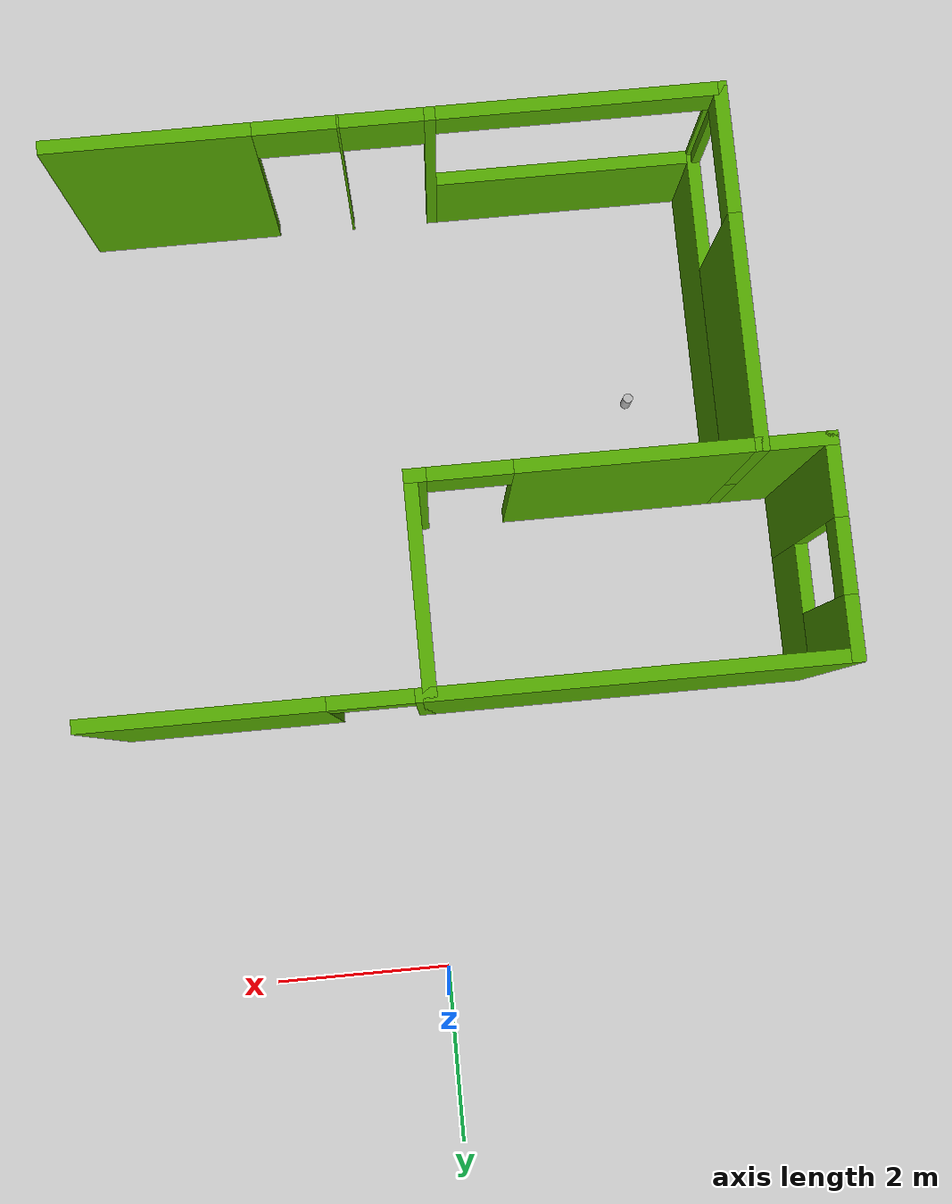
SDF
<sdf version="1.6">
 <world name="default">
  <model name="ground_plane">
   <static>1</static>
   <link name="link">
    <collision name="collision">
     <geometry><plane><normal>0 0 1</normal><size>100 100</size></plane></geometry>
     <surface><friction><ode><mu>100</mu><mu2>50</mu2></ode></friction></surface>
    </collision>
    <visual name="visual">
     <cast_shadows>0</cast_shadows>
     <geometry><plane><normal>0 0 1</normal><size>100 100</size></plane></geometry>
     <material>
      <script><uri>file://media/materials/scripts/gazebo.material</uri><name>Gazebo/Grey</name></script>
     </material>
    </visual>
   </link>
  </model>
  <model name="1floorHouse">
   <link name="Wall_292">
    <pose>-4.3959 -4.53994 0 0 0 -3.14158</pose>
    <visual name="Wall_292_Visual_0">
     <pose>-2.52118 0 1.25 0 -0 0</pose>
     <geometry><box><size>2.25743 0.15 2.5</size></box></geometry>
     <material>
      <script><uri>file://media/materials/scripts/gazebo.material</uri><name>Gazebo/Grey</name></script>
      <ambient>0.333333 0.666667 0 1</ambient>
      <diffuse>0.7 0.7 0.7 1</diffuse>
      <specular>0.01 0.01 0.01 1</specular>
      <emissive>0 0 0 1</emissive>
     </material>
    </visual>
    <visual name="Wall_292_Visual_1">
     <pose>-0.479853 0 1.25 0 -0 0</pose>
     <geometry><box><size>0.025221 0.15 2.5</size></box></geometry>
     <material>
      <script><uri>file://media/materials/scripts/gazebo.material</uri><name>Gazebo/Grey</name></script>
      <ambient>0.333333 0.666667 0 1</ambient>
      <diffuse>0.7 0.7 0.7 1</diffuse>
      <specular>0.01 0.01 0.01 1</specular>
      <emissive>0 0 0 1</emissive>
     </material>
    </visual>
    <visual name="Wall_292_Visual_2">
     <pose>0.492301 0 1.25 0 -0 0</pose>
     <geometry><box><size>0.119086 0.15 2.5</size></box></geometry>
     <material>
      <script><uri>file://media/materials/scripts/gazebo.material</uri><name>Gazebo/Grey</name></script>
      <ambient>0.333333 0.666667 0 1</ambient>
      <diffuse>0.7 0.7 0.7 1</diffuse>
      <specular>0.01 0.01 0.01 1</specular>
      <emissive>0 0 0 1</emissive>
     </material>
    </visual>
    <visual name="Wall_292_Visual_3">
     <pose>2.10087 0 0.5 0 -0 0</pose>
     <geometry><box><size>3.09805 0.15 1</size></box></geometry>
     <material>
      <script><uri>file://media/materials/scripts/gazebo.material</uri><name>Gazebo/Grey</name></script>
      <ambient>0.333333 0.666667 0 1</ambient>
      <diffuse>0.7 0.7 0.7 1</diffuse>
      <specular>0.01 0.01 0.01 1</specular>
      <emissive>0 0 0 1</emissive>
     </material>
    </visual>
    <visual name="Wall_292_Visual_4">
     <pose>3.60087 0 1.75 0 -0 0</pose>
     <geometry><box><size>0.098047 0.15 1.5</size></box></geometry>
     <material>
      <script><uri>file://media/materials/scripts/gazebo.material</uri><name>Gazebo/Grey</name></script>
      <ambient>0.333333 0.666667 0 1</ambient>
      <diffuse>0.7 0.7 0.7 1</diffuse>
      <specular>0.01 0.01 0.01 1</specular>
      <emissive>0 0 0 1</emissive>
     </material>
    </visual>
    <visual name="Wall_292_Visual_5">
     <pose>-0.942463 0 2.25 0 -0 0</pose>
     <geometry><box><size>0.9 0.15 0.5</size></box></geometry>
     <material>
      <script><uri>file://media/materials/scripts/gazebo.material</uri><name>Gazebo/Grey</name></script>
      <ambient>0.333333 0.666667 0 1</ambient>
      <diffuse>0.7 0.7 0.7 1</diffuse>
      <specular>0.01 0.01 0.01 1</specular>
      <emissive>0 0 0 1</emissive>
     </material>
    </visual>
    <visual name="Wall_292_Visual_6">
     <pose>-0.017242 0 2.25 0 -0 0</pose>
     <geometry><box><size>0.9 0.15 0.5</size></box></geometry>
     <material>
      <script><uri>file://media/materials/scripts/gazebo.material</uri><name>Gazebo/Grey</name></script>
      <ambient>0.333333 0.666667 0 1</ambient>
      <diffuse>0.7 0.7 0.7 1</diffuse>
      <specular>0.01 0.01 0.01 1</specular>
      <emissive>0 0 0 1</emissive>
     </material>
    </visual>
    <visual name="Wall_292_Visual_7">
     <pose>2.05184 0 2.35 0 -0 0</pose>
     <geometry><box><size>3 0.15 0.3</size></box></geometry>
     <material>
      <script><uri>file://media/materials/scripts/gazebo.material</uri><name>Gazebo/Grey</name></script>
      <ambient>0.333333 0.666667 0 1</ambient>
      <diffuse>0.7 0.7 0.7 1</diffuse>
      <specular>0.01 0.01 0.01 1</specular>
      <emissive>0 0 0 1</emissive>
     </material>
    </visual>
    <collision name="Wall_292_Collision_1">
     <pose>-0.479853 0 1.25 0 -0 0</pose>
     <geometry><box><size>0.025221 0.15 2.5</size></box></geometry>
     <surface>
      <friction>
       <ode><mu>1</mu><mu2>1</mu2><fdir1>0 0 0</fdir1><slip1>0</slip1><slip2>0</slip2></ode>
       <torsional>
        <coefficient>1</coefficient>
        <patch_radius>0</patch_radius>
        <surface_radius>0</surface_radius>
        <use_patch_radius>1</use_patch_radius>
        <ode><slip>0</slip></ode>
       </torsional>
      </friction>
      <bounce><restitution_coefficient>0</restitution_coefficient><threshold>1e+06</threshold></bounce>
      <contact>
       <collide_without_contact>0</collide_without_contact>
       <collide_without_contact_bitmask>1</collide_without_contact_bitmask>
       <collide_bitmask>1</collide_bitmask>
       <ode>
        <soft_cfm>0</soft_cfm>
        <soft_erp>0.2</soft_erp>
        <kp>1e+13</kp>
        <kd>1</kd>
        <max_vel>0.01</max_vel>
        <min_depth>0</min_depth>
       </ode>
       <bullet>
        <split_impulse>1</split_impulse>
        <split_impulse_penetration_threshold>-0.01</split_impulse_penetration_threshold>
        <soft_cfm>0</soft_cfm>
        <soft_erp>0.2</soft_erp>
        <kp>1e+13</kp>
        <kd>1</kd>
       </bullet>
      </contact>
     </surface>
    </collision>
    <collision name="Wall_292_Collision_0">
     <pose>-2.52118 0 1.25 0 -0 0</pose>
     <geometry><box><size>2.25743 0.15 2.5</size></box></geometry>
     <surface>
      <friction>
       <ode><mu>1</mu><mu2>1</mu2><fdir1>0 0 0</fdir1><slip1>0</slip1><slip2>0</slip2></ode>
       <torsional>
        <coefficient>1</coefficient>
        <patch_radius>0</patch_radius>
        <surface_radius>0</surface_radius>
        <use_patch_radius>1</use_patch_radius>
        <ode><slip>0</slip></ode>
       </torsional>
      </friction>
      <bounce><restitution_coefficient>0</restitution_coefficient><threshold>1e+06</threshold></bounce>
      <contact>
       <collide_without_contact>0</collide_without_contact>
       <collide_without_contact_bitmask>1</collide_without_contact_bitmask>
       <collide_bitmask>1</collide_bitmask>
       <ode>
        <soft_cfm>0</soft_cfm>
        <soft_erp>0.2</soft_erp>
        <kp>1e+13</kp>
        <kd>1</kd>
        <max_vel>0.01</max_vel>
        <min_depth>0</min_depth>
       </ode>
       <bullet>
        <split_impulse>1</split_impulse>
        <split_impulse_penetration_threshold>-0.01</split_impulse_penetration_threshold>
        <soft_cfm>0</soft_cfm>
        <soft_erp>0.2</soft_erp>
        <kp>1e+13</kp>
        <kd>1</kd>
       </bullet>
      </contact>
     </surface>
    </collision>
    <collision name="Wall_292_Collision_2">
     <pose>0.492301 0 1.25 0 -0 0</pose>
     <geometry><box><size>0.119086 0.15 2.5</size></box></geometry>
     <surface>
      <friction>
       <ode><mu>1</mu><mu2>1</mu2><fdir1>0 0 0</fdir1><slip1>0</slip1><slip2>0</slip2></ode>
       <torsional>
        <coefficient>1</coefficient>
        <patch_radius>0</patch_radius>
        <surface_radius>0</surface_radius>
        <use_patch_radius>1</use_patch_radius>
        <ode><slip>0</slip></ode>
       </torsional>
      </friction>
      <bounce><restitution_coefficient>0</restitution_coefficient><threshold>1e+06</threshold></bounce>
      <contact>
       <collide_without_contact>0</collide_without_contact>
       <collide_without_contact_bitmask>1</collide_without_contact_bitmask>
       <collide_bitmask>1</collide_bitmask>
       <ode>
        <soft_cfm>0</soft_cfm>
        <soft_erp>0.2</soft_erp>
        <kp>1e+13</kp>
        <kd>1</kd>
        <max_vel>0.01</max_vel>
        <min_depth>0</min_depth>
       </ode>
       <bullet>
        <split_impulse>1</split_impulse>
        <split_impulse_penetration_threshold>-0.01</split_impulse_penetration_threshold>
        <soft_cfm>0</soft_cfm>
        <soft_erp>0.2</soft_erp>
        <kp>1e+13</kp>
        <kd>1</kd>
       </bullet>
      </contact>
     </surface>
    </collision>
    <collision name="Wall_292_Collision_3">
     <pose>2.10087 0 0.5 0 -0 0</pose>
     <geometry><box><size>3.09805 0.15 1</size></box></geometry>
     <surface>
      <friction>
       <ode><mu>1</mu><mu2>1</mu2><fdir1>0 0 0</fdir1><slip1>0</slip1><slip2>0</slip2></ode>
       <torsional>
        <coefficient>1</coefficient>
        <patch_radius>0</patch_radius>
        <surface_radius>0</surface_radius>
        <use_patch_radius>1</use_patch_radius>
        <ode><slip>0</slip></ode>
       </torsional>
      </friction>
      <bounce><restitution_coefficient>0</restitution_coefficient><threshold>1e+06</threshold></bounce>
      <contact>
       <collide_without_contact>0</collide_without_contact>
       <collide_without_contact_bitmask>1</collide_without_contact_bitmask>
       <collide_bitmask>1</collide_bitmask>
       <ode>
        <soft_cfm>0</soft_cfm>
        <soft_erp>0.2</soft_erp>
        <kp>1e+13</kp>
        <kd>1</kd>
        <max_vel>0.01</max_vel>
        <min_depth>0</min_depth>
       </ode>
       <bullet>
        <split_impulse>1</split_impulse>
        <split_impulse_penetration_threshold>-0.01</split_impulse_penetration_threshold>
        <soft_cfm>0</soft_cfm>
        <soft_erp>0.2</soft_erp>
        <kp>1e+13</kp>
        <kd>1</kd>
       </bullet>
      </contact>
     </surface>
    </collision>
    <collision name="Wall_292_Collision_4">
     <pose>3.60087 0 1.75 0 -0 0</pose>
     <geometry><box><size>0.098047 0.15 1.5</size></box></geometry>
     <surface>
      <friction>
       <ode><mu>1</mu><mu2>1</mu2><fdir1>0 0 0</fdir1><slip1>0</slip1><slip2>0</slip2></ode>
       <torsional>
        <coefficient>1</coefficient>
        <patch_radius>0</patch_radius>
        <surface_radius>0</surface_radius>
        <use_patch_radius>1</use_patch_radius>
        <ode><slip>0</slip></ode>
       </torsional>
      </friction>
      <bounce><restitution_coefficient>0</restitution_coefficient><threshold>1e+06</threshold></bounce>
      <contact>
       <collide_without_contact>0</collide_without_contact>
       <collide_without_contact_bitmask>1</collide_without_contact_bitmask>
       <collide_bitmask>1</collide_bitmask>
       <ode>
        <soft_cfm>0</soft_cfm>
        <soft_erp>0.2</soft_erp>
        <kp>1e+13</kp>
        <kd>1</kd>
        <max_vel>0.01</max_vel>
        <min_depth>0</min_depth>
       </ode>
       <bullet>
        <split_impulse>1</split_impulse>
        <split_impulse_penetration_threshold>-0.01</split_impulse_penetration_threshold>
        <soft_cfm>0</soft_cfm>
        <soft_erp>0.2</soft_erp>
        <kp>1e+13</kp>
        <kd>1</kd>
       </bullet>
      </contact>
     </surface>
    </collision>
    <collision name="Wall_292_Collision_5">
     <pose>-0.942463 0 2.25 0 -0 0</pose>
     <geometry><box><size>0.9 0.15 0.5</size></box></geometry>
     <surface>
      <friction>
       <ode><mu>1</mu><mu2>1</mu2><fdir1>0 0 0</fdir1><slip1>0</slip1><slip2>0</slip2></ode>
       <torsional>
        <coefficient>1</coefficient>
        <patch_radius>0</patch_radius>
        <surface_radius>0</surface_radius>
        <use_patch_radius>1</use_patch_radius>
        <ode><slip>0</slip></ode>
       </torsional>
      </friction>
      <bounce><restitution_coefficient>0</restitution_coefficient><threshold>1e+06</threshold></bounce>
      <contact>
       <collide_without_contact>0</collide_without_contact>
       <collide_without_contact_bitmask>1</collide_without_contact_bitmask>
       <collide_bitmask>1</collide_bitmask>
       <ode>
        <soft_cfm>0</soft_cfm>
        <soft_erp>0.2</soft_erp>
        <kp>1e+13</kp>
        <kd>1</kd>
        <max_vel>0.01</max_vel>
        <min_depth>0</min_depth>
       </ode>
       <bullet>
        <split_impulse>1</split_impulse>
        <split_impulse_penetration_threshold>-0.01</split_impulse_penetration_threshold>
        <soft_cfm>0</soft_cfm>
        <soft_erp>0.2</soft_erp>
        <kp>1e+13</kp>
        <kd>1</kd>
       </bullet>
      </contact>
     </surface>
    </collision>
    <collision name="Wall_292_Collision_7">
     <pose>2.05184 0 2.35 0 -0 0</pose>
     <geometry><box><size>3 0.15 0.3</size></box></geometry>
     <surface>
      <friction>
       <ode><mu>1</mu><mu2>1</mu2><fdir1>0 0 0</fdir1><slip1>0</slip1><slip2>0</slip2></ode>
       <torsional>
        <coefficient>1</coefficient>
        <patch_radius>0</patch_radius>
        <surface_radius>0</surface_radius>
        <use_patch_radius>1</use_patch_radius>
        <ode><slip>0</slip></ode>
       </torsional>
      </friction>
      <bounce><restitution_coefficient>0</restitution_coefficient><threshold>1e+06</threshold></bounce>
      <contact>
       <collide_without_contact>0</collide_without_contact>
       <collide_without_contact_bitmask>1</collide_without_contact_bitmask>
       <collide_bitmask>1</collide_bitmask>
       <ode>
        <soft_cfm>0</soft_cfm>
        <soft_erp>0.2</soft_erp>
        <kp>1e+13</kp>
        <kd>1</kd>
        <max_vel>0.01</max_vel>
        <min_depth>0</min_depth>
       </ode>
       <bullet>
        <split_impulse>1</split_impulse>
        <split_impulse_penetration_threshold>-0.01</split_impulse_penetration_threshold>
        <soft_cfm>0</soft_cfm>
        <soft_erp>0.2</soft_erp>
        <kp>1e+13</kp>
        <kd>1</kd>
       </bullet>
      </contact>
     </surface>
    </collision>
    <collision name="Wall_292_Collision_6">
     <pose>-0.017242 0 2.25 0 -0 0</pose>
     <geometry><box><size>0.9 0.15 0.5</size></box></geometry>
     <surface>
      <friction>
       <ode><mu>1</mu><mu2>1</mu2><fdir1>0 0 0</fdir1><slip1>0</slip1><slip2>0</slip2></ode>
       <torsional>
        <coefficient>1</coefficient>
        <patch_radius>0</patch_radius>
        <surface_radius>0</surface_radius>
        <use_patch_radius>1</use_patch_radius>
        <ode><slip>0</slip></ode>
       </torsional>
      </friction>
      <bounce><restitution_coefficient>0</restitution_coefficient><threshold>1e+06</threshold></bounce>
      <contact>
       <collide_without_contact>0</collide_without_contact>
       <collide_without_contact_bitmask>1</collide_without_contact_bitmask>
       <collide_bitmask>1</collide_bitmask>
       <ode>
        <soft_cfm>0</soft_cfm>
        <soft_erp>0.2</soft_erp>
        <kp>1e+13</kp>
        <kd>1</kd>
        <max_vel>0.01</max_vel>
        <min_depth>0</min_depth>
       </ode>
       <bullet>
        <split_impulse>1</split_impulse>
        <split_impulse_penetration_threshold>-0.01</split_impulse_penetration_threshold>
        <soft_cfm>0</soft_cfm>
        <soft_erp>0.2</soft_erp>
        <kp>1e+13</kp>
        <kd>1</kd>
       </bullet>
      </contact>
     </surface>
    </collision>
   </link>
   <link name="Wall_293">
    <pose>-7.97079 -2.615 0 0 -0 1.5708</pose>
    <visual name="Wall_293_Visual_0">
     <pose>-1.97712 0 1.25 0 -0 0</pose>
     <geometry><box><size>0.045764 0.15 2.5</size></box></geometry>
     <material>
      <script><uri>file://media/materials/scripts/gazebo.material</uri><name>Gazebo/Grey</name></script>
      <ambient>0.333333 0.666667 0 1</ambient>
      <diffuse>0.7 0.7 0.7 1</diffuse>
      <specular>0.01 0.01 0.01 1</specular>
      <emissive>0 0 0 1</emissive>
     </material>
    </visual>
    <visual name="Wall_293_Visual_1">
     <pose>0.022882 0 0.5 0 -0 0</pose>
     <geometry><box><size>3.95424 0.15 1</size></box></geometry>
     <material>
      <script><uri>file://media/materials/scripts/gazebo.material</uri><name>Gazebo/Grey</name></script>
      <ambient>0.333333 0.666667 0 1</ambient>
      <diffuse>0.7 0.7 0.7 1</diffuse>
      <specular>0.01 0.01 0.01 1</specular>
      <emissive>0 0 0 1</emissive>
     </material>
    </visual>
    <visual name="Wall_293_Visual_2">
     <pose>0.722882 0 1.75 0 -0 0</pose>
     <geometry><box><size>2.55424 0.15 1.5</size></box></geometry>
     <material>
      <script><uri>file://media/materials/scripts/gazebo.material</uri><name>Gazebo/Grey</name></script>
      <ambient>0.333333 0.666667 0 1</ambient>
      <diffuse>0.7 0.7 0.7 1</diffuse>
      <specular>0.01 0.01 0.01 1</specular>
      <emissive>0 0 0 1</emissive>
     </material>
    </visual>
    <visual name="Wall_293_Visual_3">
     <pose>-1.25424 0 2.35 0 -0 0</pose>
     <geometry><box><size>1.4 0.15 0.3</size></box></geometry>
     <material>
      <script><uri>file://media/materials/scripts/gazebo.material</uri><name>Gazebo/Grey</name></script>
      <ambient>0.333333 0.666667 0 1</ambient>
      <diffuse>0.7 0.7 0.7 1</diffuse>
      <specular>0.01 0.01 0.01 1</specular>
      <emissive>0 0 0 1</emissive>
     </material>
    </visual>
    <collision name="Wall_293_Collision_0">
     <pose>-1.97712 0 1.25 0 -0 0</pose>
     <geometry><box><size>0.045764 0.15 2.5</size></box></geometry>
     <surface>
      <friction>
       <ode><mu>1</mu><mu2>1</mu2><fdir1>0 0 0</fdir1><slip1>0</slip1><slip2>0</slip2></ode>
       <torsional>
        <coefficient>1</coefficient>
        <patch_radius>0</patch_radius>
        <surface_radius>0</surface_radius>
        <use_patch_radius>1</use_patch_radius>
        <ode><slip>0</slip></ode>
       </torsional>
      </friction>
      <bounce><restitution_coefficient>0</restitution_coefficient><threshold>1e+06</threshold></bounce>
      <contact>
       <collide_without_contact>0</collide_without_contact>
       <collide_without_contact_bitmask>1</collide_without_contact_bitmask>
       <collide_bitmask>1</collide_bitmask>
       <ode>
        <soft_cfm>0</soft_cfm>
        <soft_erp>0.2</soft_erp>
        <kp>1e+13</kp>
        <kd>1</kd>
        <max_vel>0.01</max_vel>
        <min_depth>0</min_depth>
       </ode>
       <bullet>
        <split_impulse>1</split_impulse>
        <split_impulse_penetration_threshold>-0.01</split_impulse_penetration_threshold>
        <soft_cfm>0</soft_cfm>
        <soft_erp>0.2</soft_erp>
        <kp>1e+13</kp>
        <kd>1</kd>
       </bullet>
      </contact>
     </surface>
    </collision>
    <collision name="Wall_293_Collision_1">
     <pose>0.022882 0 0.5 0 -0 0</pose>
     <geometry><box><size>3.95424 0.15 1</size></box></geometry>
     <surface>
      <friction>
       <ode><mu>1</mu><mu2>1</mu2><fdir1>0 0 0</fdir1><slip1>0</slip1><slip2>0</slip2></ode>
       <torsional>
        <coefficient>1</coefficient>
        <patch_radius>0</patch_radius>
        <surface_radius>0</surface_radius>
        <use_patch_radius>1</use_patch_radius>
        <ode><slip>0</slip></ode>
       </torsional>
      </friction>
      <bounce><restitution_coefficient>0</restitution_coefficient><threshold>1e+06</threshold></bounce>
      <contact>
       <collide_without_contact>0</collide_without_contact>
       <collide_without_contact_bitmask>1</collide_without_contact_bitmask>
       <collide_bitmask>1</collide_bitmask>
       <ode>
        <soft_cfm>0</soft_cfm>
        <soft_erp>0.2</soft_erp>
        <kp>1e+13</kp>
        <kd>1</kd>
        <max_vel>0.01</max_vel>
        <min_depth>0</min_depth>
       </ode>
       <bullet>
        <split_impulse>1</split_impulse>
        <split_impulse_penetration_threshold>-0.01</split_impulse_penetration_threshold>
        <soft_cfm>0</soft_cfm>
        <soft_erp>0.2</soft_erp>
        <kp>1e+13</kp>
        <kd>1</kd>
       </bullet>
      </contact>
     </surface>
    </collision>
    <collision name="Wall_293_Collision_2">
     <pose>0.722882 0 1.75 0 -0 0</pose>
     <geometry><box><size>2.55424 0.15 1.5</size></box></geometry>
     <surface>
      <friction>
       <ode><mu>1</mu><mu2>1</mu2><fdir1>0 0 0</fdir1><slip1>0</slip1><slip2>0</slip2></ode>
       <torsional>
        <coefficient>1</coefficient>
        <patch_radius>0</patch_radius>
        <surface_radius>0</surface_radius>
        <use_patch_radius>1</use_patch_radius>
        <ode><slip>0</slip></ode>
       </torsional>
      </friction>
      <bounce><restitution_coefficient>0</restitution_coefficient><threshold>1e+06</threshold></bounce>
      <contact>
       <collide_without_contact>0</collide_without_contact>
       <collide_without_contact_bitmask>1</collide_without_contact_bitmask>
       <collide_bitmask>1</collide_bitmask>
       <ode>
        <soft_cfm>0</soft_cfm>
        <soft_erp>0.2</soft_erp>
        <kp>1e+13</kp>
        <kd>1</kd>
        <max_vel>0.01</max_vel>
        <min_depth>0</min_depth>
       </ode>
       <bullet>
        <split_impulse>1</split_impulse>
        <split_impulse_penetration_threshold>-0.01</split_impulse_penetration_threshold>
        <soft_cfm>0</soft_cfm>
        <soft_erp>0.2</soft_erp>
        <kp>1e+13</kp>
        <kd>1</kd>
       </bullet>
      </contact>
     </surface>
    </collision>
    <collision name="Wall_293_Collision_3">
     <pose>-1.25424 0 2.35 0 -0 0</pose>
     <geometry><box><size>1.4 0.15 0.3</size></box></geometry>
     <surface>
      <friction>
       <ode><mu>1</mu><mu2>1</mu2><fdir1>0 0 0</fdir1><slip1>0</slip1><slip2>0</slip2></ode>
       <torsional>
        <coefficient>1</coefficient>
        <patch_radius>0</patch_radius>
        <surface_radius>0</surface_radius>
        <use_patch_radius>1</use_patch_radius>
        <ode><slip>0</slip></ode>
       </torsional>
      </friction>
      <bounce><restitution_coefficient>0</restitution_coefficient><threshold>1e+06</threshold></bounce>
      <contact>
       <collide_without_contact>0</collide_without_contact>
       <collide_without_contact_bitmask>1</collide_without_contact_bitmask>
       <collide_bitmask>1</collide_bitmask>
       <ode>
        <soft_cfm>0</soft_cfm>
        <soft_erp>0.2</soft_erp>
        <kp>1e+13</kp>
        <kd>1</kd>
        <max_vel>0.01</max_vel>
        <min_depth>0</min_depth>
       </ode>
       <bullet>
        <split_impulse>1</split_impulse>
        <split_impulse_penetration_threshold>-0.01</split_impulse_penetration_threshold>
        <soft_cfm>0</soft_cfm>
        <soft_erp>0.2</soft_erp>
        <kp>1e+13</kp>
        <kd>1</kd>
       </bullet>
      </contact>
     </surface>
    </collision>
   </link>
   <link name="Wall_294">
    <pose>-8.3305 -0.690004 0 0 -0 3.14159</pose>
    <visual name="Wall_294_Visual">
     <pose>0 0 1.25 0 -0 0</pose>
     <geometry><box><size>0.86941 0.15 2.5</size></box></geometry>
     <material>
      <script><uri>file://media/materials/scripts/gazebo.material</uri><name>Gazebo/Grey</name></script>
      <ambient>0.333333 0.666667 0 1</ambient>
      <diffuse>0.7 0.7 0.7 1</diffuse>
      <specular>0.01 0.01 0.01 1</specular>
      <emissive>0 0 0 1</emissive>
     </material>
    </visual>
    <collision name="Wall_294_Collision">
     <pose>0 0 1.25 0 -0 0</pose>
     <geometry><box><size>0.86941 0.15 2.5</size></box></geometry>
     <surface>
      <friction>
       <ode><mu>1</mu><mu2>1</mu2><fdir1>0 0 0</fdir1><slip1>0</slip1><slip2>0</slip2></ode>
       <torsional>
        <coefficient>1</coefficient>
        <patch_radius>0</patch_radius>
        <surface_radius>0</surface_radius>
        <use_patch_radius>1</use_patch_radius>
        <ode><slip>0</slip></ode>
       </torsional>
      </friction>
      <bounce><restitution_coefficient>0</restitution_coefficient><threshold>1e+06</threshold></bounce>
      <contact>
       <collide_without_contact>0</collide_without_contact>
       <collide_without_contact_bitmask>1</collide_without_contact_bitmask>
       <collide_bitmask>1</collide_bitmask>
       <ode>
        <soft_cfm>0</soft_cfm>
        <soft_erp>0.2</soft_erp>
        <kp>1e+13</kp>
        <kd>1</kd>
        <max_vel>0.01</max_vel>
        <min_depth>0</min_depth>
       </ode>
       <bullet>
        <split_impulse>1</split_impulse>
        <split_impulse_penetration_threshold>-0.01</split_impulse_penetration_threshold>
        <soft_cfm>0</soft_cfm>
        <soft_erp>0.2</soft_erp>
        <kp>1e+13</kp>
        <kd>1</kd>
       </bullet>
      </contact>
     </surface>
    </collision>
   </link>
   <link name="Wall_295">
    <pose>-8.69021 0.434996 0 0 -0 1.5708</pose>
    <visual name="Wall_295_Visual_0">
     <pose>-0.748437 0 1.25 0 -0 0</pose>
     <geometry><box><size>0.903127 0.15 2.5</size></box></geometry>
     <material>
      <script><uri>file://media/materials/scripts/gazebo.material</uri><name>Gazebo/Grey</name></script>
      <ambient>0.333333 0.666667 0 1</ambient>
      <diffuse>0.7 0.7 0.7 1</diffuse>
      <specular>0.01 0.01 0.01 1</specular>
      <emissive>0 0 0 1</emissive>
     </material>
    </visual>
    <visual name="Wall_295_Visual_1">
     <pose>0.451563 0 0.5 0 -0 0</pose>
     <geometry><box><size>1.49687 0.15 1</size></box></geometry>
     <material>
      <script><uri>file://media/materials/scripts/gazebo.material</uri><name>Gazebo/Grey</name></script>
      <ambient>0.333333 0.666667 0 1</ambient>
      <diffuse>0.7 0.7 0.7 1</diffuse>
      <specular>0.01 0.01 0.01 1</specular>
      <emissive>0 0 0 1</emissive>
     </material>
    </visual>
    <visual name="Wall_295_Visual_2">
     <pose>0.851563 0 1.75 0 -0 0</pose>
     <geometry><box><size>0.696873 0.15 1.5</size></box></geometry>
     <material>
      <script><uri>file://media/materials/scripts/gazebo.material</uri><name>Gazebo/Grey</name></script>
      <ambient>0.333333 0.666667 0 1</ambient>
      <diffuse>0.7 0.7 0.7 1</diffuse>
      <specular>0.01 0.01 0.01 1</specular>
      <emissive>0 0 0 1</emissive>
     </material>
    </visual>
    <visual name="Wall_295_Visual_3">
     <pose>0.103127 0 2.35 0 -0 0</pose>
     <geometry><box><size>0.8 0.15 0.3</size></box></geometry>
     <material>
      <script><uri>file://media/materials/scripts/gazebo.material</uri><name>Gazebo/Grey</name></script>
      <ambient>0.333333 0.666667 0 1</ambient>
      <diffuse>0.7 0.7 0.7 1</diffuse>
      <specular>0.01 0.01 0.01 1</specular>
      <emissive>0 0 0 1</emissive>
     </material>
    </visual>
    <collision name="Wall_295_Collision_0">
     <pose>-0.748437 0 1.25 0 -0 0</pose>
     <geometry><box><size>0.903127 0.15 2.5</size></box></geometry>
     <surface>
      <friction>
       <ode><mu>1</mu><mu2>1</mu2><fdir1>0 0 0</fdir1><slip1>0</slip1><slip2>0</slip2></ode>
       <torsional>
        <coefficient>1</coefficient>
        <patch_radius>0</patch_radius>
        <surface_radius>0</surface_radius>
        <use_patch_radius>1</use_patch_radius>
        <ode><slip>0</slip></ode>
       </torsional>
      </friction>
      <bounce><restitution_coefficient>0</restitution_coefficient><threshold>1e+06</threshold></bounce>
      <contact>
       <collide_without_contact>0</collide_without_contact>
       <collide_without_contact_bitmask>1</collide_without_contact_bitmask>
       <collide_bitmask>1</collide_bitmask>
       <ode>
        <soft_cfm>0</soft_cfm>
        <soft_erp>0.2</soft_erp>
        <kp>1e+13</kp>
        <kd>1</kd>
        <max_vel>0.01</max_vel>
        <min_depth>0</min_depth>
       </ode>
       <bullet>
        <split_impulse>1</split_impulse>
        <split_impulse_penetration_threshold>-0.01</split_impulse_penetration_threshold>
        <soft_cfm>0</soft_cfm>
        <soft_erp>0.2</soft_erp>
        <kp>1e+13</kp>
        <kd>1</kd>
       </bullet>
      </contact>
     </surface>
    </collision>
    <collision name="Wall_295_Collision_1">
     <pose>0.451563 0 0.5 0 -0 0</pose>
     <geometry><box><size>1.49687 0.15 1</size></box></geometry>
     <surface>
      <friction>
       <ode><mu>1</mu><mu2>1</mu2><fdir1>0 0 0</fdir1><slip1>0</slip1><slip2>0</slip2></ode>
       <torsional>
        <coefficient>1</coefficient>
        <patch_radius>0</patch_radius>
        <surface_radius>0</surface_radius>
        <use_patch_radius>1</use_patch_radius>
        <ode><slip>0</slip></ode>
       </torsional>
      </friction>
      <bounce><restitution_coefficient>0</restitution_coefficient><threshold>1e+06</threshold></bounce>
      <contact>
       <collide_without_contact>0</collide_without_contact>
       <collide_without_contact_bitmask>1</collide_without_contact_bitmask>
       <collide_bitmask>1</collide_bitmask>
       <ode>
        <soft_cfm>0</soft_cfm>
        <soft_erp>0.2</soft_erp>
        <kp>1e+13</kp>
        <kd>1</kd>
        <max_vel>0.01</max_vel>
        <min_depth>0</min_depth>
       </ode>
       <bullet>
        <split_impulse>1</split_impulse>
        <split_impulse_penetration_threshold>-0.01</split_impulse_penetration_threshold>
        <soft_cfm>0</soft_cfm>
        <soft_erp>0.2</soft_erp>
        <kp>1e+13</kp>
        <kd>1</kd>
       </bullet>
      </contact>
     </surface>
    </collision>
    <collision name="Wall_295_Collision_2">
     <pose>0.851563 0 1.75 0 -0 0</pose>
     <geometry><box><size>0.696873 0.15 1.5</size></box></geometry>
     <surface>
      <friction>
       <ode><mu>1</mu><mu2>1</mu2><fdir1>0 0 0</fdir1><slip1>0</slip1><slip2>0</slip2></ode>
       <torsional>
        <coefficient>1</coefficient>
        <patch_radius>0</patch_radius>
        <surface_radius>0</surface_radius>
        <use_patch_radius>1</use_patch_radius>
        <ode><slip>0</slip></ode>
       </torsional>
      </friction>
      <bounce><restitution_coefficient>0</restitution_coefficient><threshold>1e+06</threshold></bounce>
      <contact>
       <collide_without_contact>0</collide_without_contact>
       <collide_without_contact_bitmask>1</collide_without_contact_bitmask>
       <collide_bitmask>1</collide_bitmask>
       <ode>
        <soft_cfm>0</soft_cfm>
        <soft_erp>0.2</soft_erp>
        <kp>1e+13</kp>
        <kd>1</kd>
        <max_vel>0.01</max_vel>
        <min_depth>0</min_depth>
       </ode>
       <bullet>
        <split_impulse>1</split_impulse>
        <split_impulse_penetration_threshold>-0.01</split_impulse_penetration_threshold>
        <soft_cfm>0</soft_cfm>
        <soft_erp>0.2</soft_erp>
        <kp>1e+13</kp>
        <kd>1</kd>
       </bullet>
      </contact>
     </surface>
    </collision>
    <collision name="Wall_295_Collision_3">
     <pose>0.103127 0 2.35 0 -0 0</pose>
     <geometry><box><size>0.8 0.15 0.3</size></box></geometry>
     <surface>
      <friction>
       <ode><mu>1</mu><mu2>1</mu2><fdir1>0 0 0</fdir1><slip1>0</slip1><slip2>0</slip2></ode>
       <torsional>
        <coefficient>1</coefficient>
        <patch_radius>0</patch_radius>
        <surface_radius>0</surface_radius>
        <use_patch_radius>1</use_patch_radius>
        <ode><slip>0</slip></ode>
       </torsional>
      </friction>
      <bounce><restitution_coefficient>0</restitution_coefficient><threshold>1e+06</threshold></bounce>
      <contact>
       <collide_without_contact>0</collide_without_contact>
       <collide_without_contact_bitmask>1</collide_without_contact_bitmask>
       <collide_bitmask>1</collide_bitmask>
       <ode>
        <soft_cfm>0</soft_cfm>
        <soft_erp>0.2</soft_erp>
        <kp>1e+13</kp>
        <kd>1</kd>
        <max_vel>0.01</max_vel>
        <min_depth>0</min_depth>
       </ode>
       <bullet>
        <split_impulse>1</split_impulse>
        <split_impulse_penetration_threshold>-0.01</split_impulse_penetration_threshold>
        <soft_cfm>0</soft_cfm>
        <soft_erp>0.2</soft_erp>
        <kp>1e+13</kp>
        <kd>1</kd>
       </bullet>
      </contact>
     </surface>
    </collision>
   </link>
   <link name="Wall_296">
    <pose>-6.5152 1.56 0 0 -0 0</pose>
    <visual name="Wall_296_Visual">
     <pose>0 0 1.25 0 -0 0</pose>
     <geometry><box><size>4.5 0.15 2.5</size></box></geometry>
     <material>
      <script><uri>file://media/materials/scripts/gazebo.material</uri><name>Gazebo/Grey</name></script>
      <ambient>0.333333 0.666667 0 1</ambient>
      <diffuse>0.7 0.7 0.7 1</diffuse>
      <specular>0.01 0.01 0.01 1</specular>
      <emissive>0 0 0 1</emissive>
     </material>
    </visual>
    <collision name="Wall_296_Collision">
     <pose>0 0 1.25 0 -0 0</pose>
     <geometry><box><size>4.5 0.15 2.5</size></box></geometry>
     <surface>
      <friction>
       <ode><mu>1</mu><mu2>1</mu2><fdir1>0 0 0</fdir1><slip1>0</slip1><slip2>0</slip2></ode>
       <torsional>
        <coefficient>1</coefficient>
        <patch_radius>0</patch_radius>
        <surface_radius>0</surface_radius>
        <use_patch_radius>1</use_patch_radius>
        <ode><slip>0</slip></ode>
       </torsional>
      </friction>
      <bounce><restitution_coefficient>0</restitution_coefficient><threshold>1e+06</threshold></bounce>
      <contact>
       <collide_without_contact>0</collide_without_contact>
       <collide_without_contact_bitmask>1</collide_without_contact_bitmask>
       <collide_bitmask>1</collide_bitmask>
       <ode>
        <soft_cfm>0</soft_cfm>
        <soft_erp>0.2</soft_erp>
        <kp>1e+13</kp>
        <kd>1</kd>
        <max_vel>0.01</max_vel>
        <min_depth>0</min_depth>
       </ode>
       <bullet>
        <split_impulse>1</split_impulse>
        <split_impulse_penetration_threshold>-0.01</split_impulse_penetration_threshold>
        <soft_cfm>0</soft_cfm>
        <soft_erp>0.2</soft_erp>
        <kp>1e+13</kp>
        <kd>1</kd>
       </bullet>
      </contact>
     </surface>
    </collision>
   </link>
   <link name="Wall_297">
    <pose>-4.34021 0.434996 0 0 0 -1.5708</pose>
    <visual name="Wall_297_Visual">
     <pose>0 0 1.25 0 -0 0</pose>
     <geometry><box><size>2.4 0.15 2.5</size></box></geometry>
     <material>
      <script><uri>file://media/materials/scripts/gazebo.material</uri><name>Gazebo/Grey</name></script>
      <ambient>0.333333 0.666667 0 1</ambient>
      <diffuse>0.7 0.7 0.7 1</diffuse>
      <specular>0.01 0.01 0.01 1</specular>
      <emissive>0 0 0 1</emissive>
     </material>
    </visual>
    <collision name="Wall_297_Collision">
     <pose>0 0 1.25 0 -0 0</pose>
     <geometry><box><size>2.4 0.15 2.5</size></box></geometry>
     <surface>
      <friction>
       <ode><mu>1</mu><mu2>1</mu2><fdir1>0 0 0</fdir1><slip1>0</slip1><slip2>0</slip2></ode>
       <torsional>
        <coefficient>1</coefficient>
        <patch_radius>0</patch_radius>
        <surface_radius>0</surface_radius>
        <use_patch_radius>1</use_patch_radius>
        <ode><slip>0</slip></ode>
       </torsional>
      </friction>
      <bounce><restitution_coefficient>0</restitution_coefficient><threshold>1e+06</threshold></bounce>
      <contact>
       <collide_without_contact>0</collide_without_contact>
       <collide_without_contact_bitmask>1</collide_without_contact_bitmask>
       <collide_bitmask>1</collide_bitmask>
       <ode>
        <soft_cfm>0</soft_cfm>
        <soft_erp>0.2</soft_erp>
        <kp>1e+13</kp>
        <kd>1</kd>
        <max_vel>0.01</max_vel>
        <min_depth>0</min_depth>
       </ode>
       <bullet>
        <split_impulse>1</split_impulse>
        <split_impulse_penetration_threshold>-0.01</split_impulse_penetration_threshold>
        <soft_cfm>0</soft_cfm>
        <soft_erp>0.2</soft_erp>
        <kp>1e+13</kp>
        <kd>1</kd>
       </bullet>
      </contact>
     </surface>
    </collision>
   </link>
   <link name="Wall_298">
    <pose>-6.1555 -0.690004 0 0 -0 3.14159</pose>
    <visual name="Wall_298_Visual_0">
     <pose>-1.77022 0 1.25 0 -0 0</pose>
     <geometry><box><size>0.240159 0.15 2.5</size></box></geometry>
     <material>
      <script><uri>file://media/materials/scripts/gazebo.material</uri><name>Gazebo/Grey</name></script>
      <ambient>0.333333 0.666667 0 1</ambient>
      <diffuse>0.7 0.7 0.7 1</diffuse>
      <specular>0.01 0.01 0.01 1</specular>
      <emissive>0 0 0 1</emissive>
     </material>
    </visual>
    <visual name="Wall_298_Visual_1">
     <pose>0.570079 0 1.25 0 -0 0</pose>
     <geometry><box><size>2.64043 0.15 2.5</size></box></geometry>
     <material>
      <script><uri>file://media/materials/scripts/gazebo.material</uri><name>Gazebo/Grey</name></script>
      <ambient>0.333333 0.666667 0 1</ambient>
      <diffuse>0.7 0.7 0.7 1</diffuse>
      <specular>0.01 0.01 0.01 1</specular>
      <emissive>0 0 0 1</emissive>
     </material>
    </visual>
    <visual name="Wall_298_Visual_2">
     <pose>-1.20014 0 2.25 0 -0 0</pose>
     <geometry><box><size>0.9 0.15 0.5</size></box></geometry>
     <material>
      <script><uri>file://media/materials/scripts/gazebo.material</uri><name>Gazebo/Grey</name></script>
      <ambient>0.333333 0.666667 0 1</ambient>
      <diffuse>0.7 0.7 0.7 1</diffuse>
      <specular>0.01 0.01 0.01 1</specular>
      <emissive>0 0 0 1</emissive>
     </material>
    </visual>
    <collision name="Wall_298_Collision_0">
     <pose>-1.77022 0 1.25 0 -0 0</pose>
     <geometry><box><size>0.240159 0.15 2.5</size></box></geometry>
     <surface>
      <friction>
       <ode><mu>1</mu><mu2>1</mu2><fdir1>0 0 0</fdir1><slip1>0</slip1><slip2>0</slip2></ode>
       <torsional>
        <coefficient>1</coefficient>
        <patch_radius>0</patch_radius>
        <surface_radius>0</surface_radius>
        <use_patch_radius>1</use_patch_radius>
        <ode><slip>0</slip></ode>
       </torsional>
      </friction>
      <bounce><restitution_coefficient>0</restitution_coefficient><threshold>1e+06</threshold></bounce>
      <contact>
       <collide_without_contact>0</collide_without_contact>
       <collide_without_contact_bitmask>1</collide_without_contact_bitmask>
       <collide_bitmask>1</collide_bitmask>
       <ode>
        <soft_cfm>0</soft_cfm>
        <soft_erp>0.2</soft_erp>
        <kp>1e+13</kp>
        <kd>1</kd>
        <max_vel>0.01</max_vel>
        <min_depth>0</min_depth>
       </ode>
       <bullet>
        <split_impulse>1</split_impulse>
        <split_impulse_penetration_threshold>-0.01</split_impulse_penetration_threshold>
        <soft_cfm>0</soft_cfm>
        <soft_erp>0.2</soft_erp>
        <kp>1e+13</kp>
        <kd>1</kd>
       </bullet>
      </contact>
     </surface>
    </collision>
    <collision name="Wall_298_Collision_1">
     <pose>0.570079 0 1.25 0 -0 0</pose>
     <geometry><box><size>2.64043 0.15 2.5</size></box></geometry>
     <surface>
      <friction>
       <ode><mu>1</mu><mu2>1</mu2><fdir1>0 0 0</fdir1><slip1>0</slip1><slip2>0</slip2></ode>
       <torsional>
        <coefficient>1</coefficient>
        <patch_radius>0</patch_radius>
        <surface_radius>0</surface_radius>
        <use_patch_radius>1</use_patch_radius>
        <ode><slip>0</slip></ode>
       </torsional>
      </friction>
      <bounce><restitution_coefficient>0</restitution_coefficient><threshold>1e+06</threshold></bounce>
      <contact>
       <collide_without_contact>0</collide_without_contact>
       <collide_without_contact_bitmask>1</collide_without_contact_bitmask>
       <collide_bitmask>1</collide_bitmask>
       <ode>
        <soft_cfm>0</soft_cfm>
        <soft_erp>0.2</soft_erp>
        <kp>1e+13</kp>
        <kd>1</kd>
        <max_vel>0.01</max_vel>
        <min_depth>0</min_depth>
       </ode>
       <bullet>
        <split_impulse>1</split_impulse>
        <split_impulse_penetration_threshold>-0.01</split_impulse_penetration_threshold>
        <soft_cfm>0</soft_cfm>
        <soft_erp>0.2</soft_erp>
        <kp>1e+13</kp>
        <kd>1</kd>
       </bullet>
      </contact>
     </surface>
    </collision>
    <collision name="Wall_298_Collision_2">
     <pose>-1.20014 0 2.25 0 -0 0</pose>
     <geometry><box><size>0.9 0.15 0.5</size></box></geometry>
     <surface>
      <friction>
       <ode><mu>1</mu><mu2>1</mu2><fdir1>0 0 0</fdir1><slip1>0</slip1><slip2>0</slip2></ode>
       <torsional>
        <coefficient>1</coefficient>
        <patch_radius>0</patch_radius>
        <surface_radius>0</surface_radius>
        <use_patch_radius>1</use_patch_radius>
        <ode><slip>0</slip></ode>
       </torsional>
      </friction>
      <bounce><restitution_coefficient>0</restitution_coefficient><threshold>1e+06</threshold></bounce>
      <contact>
       <collide_without_contact>0</collide_without_contact>
       <collide_without_contact_bitmask>1</collide_without_contact_bitmask>
       <collide_bitmask>1</collide_bitmask>
       <ode>
        <soft_cfm>0</soft_cfm>
        <soft_erp>0.2</soft_erp>
        <kp>1e+13</kp>
        <kd>1</kd>
        <max_vel>0.01</max_vel>
        <min_depth>0</min_depth>
       </ode>
       <bullet>
        <split_impulse>1</split_impulse>
        <split_impulse_penetration_threshold>-0.01</split_impulse_penetration_threshold>
        <soft_cfm>0</soft_cfm>
        <soft_erp>0.2</soft_erp>
        <kp>1e+13</kp>
        <kd>1</kd>
       </bullet>
      </contact>
     </surface>
    </collision>
   </link>
   <link name="Wall_299">
    <pose>-2.565 1.56 0 0 -0 0</pose>
    <visual name="Wall_299_Visual_0">
     <pose>-1.73627 0 1.25 0 -0 0</pose>
     <geometry><box><size>0.227865 0.15 2.5</size></box></geometry>
     <material>
      <script><uri>file://media/materials/scripts/gazebo.material</uri><name>Gazebo/Grey</name></script>
      <ambient>0.333333 0.666667 0 1</ambient>
      <diffuse>0.7 0.7 0.7 1</diffuse>
      <specular>0.01 0.01 0.01 1</specular>
      <emissive>0 0 0 1</emissive>
     </material>
    </visual>
    <visual name="Wall_299_Visual_1">
     <pose>0.563933 0 1.25 0 -0 0</pose>
     <geometry><box><size>2.57254 0.15 2.5</size></box></geometry>
     <material>
      <script><uri>file://media/materials/scripts/gazebo.material</uri><name>Gazebo/Grey</name></script>
      <ambient>0.333333 0.666667 0 1</ambient>
      <diffuse>0.7 0.7 0.7 1</diffuse>
      <specular>0.01 0.01 0.01 1</specular>
      <emissive>0 0 0 1</emissive>
     </material>
    </visual>
    <visual name="Wall_299_Visual_2">
     <pose>-1.17234 0 2.25 0 -0 0</pose>
     <geometry><box><size>0.9 0.15 0.5</size></box></geometry>
     <material>
      <script><uri>file://media/materials/scripts/gazebo.material</uri><name>Gazebo/Grey</name></script>
      <ambient>0.333333 0.666667 0 1</ambient>
      <diffuse>0.7 0.7 0.7 1</diffuse>
      <specular>0.01 0.01 0.01 1</specular>
      <emissive>0 0 0 1</emissive>
     </material>
    </visual>
    <collision name="Wall_299_Collision_0">
     <pose>-1.73627 0 1.25 0 -0 0</pose>
     <geometry><box><size>0.227865 0.15 2.5</size></box></geometry>
     <surface>
      <friction>
       <ode><mu>1</mu><mu2>1</mu2><fdir1>0 0 0</fdir1><slip1>0</slip1><slip2>0</slip2></ode>
       <torsional>
        <coefficient>1</coefficient>
        <patch_radius>0</patch_radius>
        <surface_radius>0</surface_radius>
        <use_patch_radius>1</use_patch_radius>
        <ode><slip>0</slip></ode>
       </torsional>
      </friction>
      <bounce><restitution_coefficient>0</restitution_coefficient><threshold>1e+06</threshold></bounce>
      <contact>
       <collide_without_contact>0</collide_without_contact>
       <collide_without_contact_bitmask>1</collide_without_contact_bitmask>
       <collide_bitmask>1</collide_bitmask>
       <ode>
        <soft_cfm>0</soft_cfm>
        <soft_erp>0.2</soft_erp>
        <kp>1e+13</kp>
        <kd>1</kd>
        <max_vel>0.01</max_vel>
        <min_depth>0</min_depth>
       </ode>
       <bullet>
        <split_impulse>1</split_impulse>
        <split_impulse_penetration_threshold>-0.01</split_impulse_penetration_threshold>
        <soft_cfm>0</soft_cfm>
        <soft_erp>0.2</soft_erp>
        <kp>1e+13</kp>
        <kd>1</kd>
       </bullet>
      </contact>
     </surface>
    </collision>
    <collision name="Wall_299_Collision_1">
     <pose>0.563933 0 1.25 0 -0 0</pose>
     <geometry><box><size>2.57254 0.15 2.5</size></box></geometry>
     <surface>
      <friction>
       <ode><mu>1</mu><mu2>1</mu2><fdir1>0 0 0</fdir1><slip1>0</slip1><slip2>0</slip2></ode>
       <torsional>
        <coefficient>1</coefficient>
        <patch_radius>0</patch_radius>
        <surface_radius>0</surface_radius>
        <use_patch_radius>1</use_patch_radius>
        <ode><slip>0</slip></ode>
       </torsional>
      </friction>
      <bounce><restitution_coefficient>0</restitution_coefficient><threshold>1e+06</threshold></bounce>
      <contact>
       <collide_without_contact>0</collide_without_contact>
       <collide_without_contact_bitmask>1</collide_without_contact_bitmask>
       <collide_bitmask>1</collide_bitmask>
       <ode>
        <soft_cfm>0</soft_cfm>
        <soft_erp>0.2</soft_erp>
        <kp>1e+13</kp>
        <kd>1</kd>
        <max_vel>0.01</max_vel>
        <min_depth>0</min_depth>
       </ode>
       <bullet>
        <split_impulse>1</split_impulse>
        <split_impulse_penetration_threshold>-0.01</split_impulse_penetration_threshold>
        <soft_cfm>0</soft_cfm>
        <soft_erp>0.2</soft_erp>
        <kp>1e+13</kp>
        <kd>1</kd>
       </bullet>
      </contact>
     </surface>
    </collision>
    <collision name="Wall_299_Collision_2">
     <pose>-1.17234 0 2.25 0 -0 0</pose>
     <geometry><box><size>0.9 0.15 0.5</size></box></geometry>
     <surface>
      <friction>
       <ode><mu>1</mu><mu2>1</mu2><fdir1>0 0 0</fdir1><slip1>0</slip1><slip2>0</slip2></ode>
       <torsional>
        <coefficient>1</coefficient>
        <patch_radius>0</patch_radius>
        <surface_radius>0</surface_radius>
        <use_patch_radius>1</use_patch_radius>
        <ode><slip>0</slip></ode>
       </torsional>
      </friction>
      <bounce><restitution_coefficient>0</restitution_coefficient><threshold>1e+06</threshold></bounce>
      <contact>
       <collide_without_contact>0</collide_without_contact>
       <collide_without_contact_bitmask>1</collide_without_contact_bitmask>
       <collide_bitmask>1</collide_bitmask>
       <ode>
        <soft_cfm>0</soft_cfm>
        <soft_erp>0.2</soft_erp>
        <kp>1e+13</kp>
        <kd>1</kd>
        <max_vel>0.01</max_vel>
        <min_depth>0</min_depth>
       </ode>
       <bullet>
        <split_impulse>1</split_impulse>
        <split_impulse_penetration_threshold>-0.01</split_impulse_penetration_threshold>
        <soft_cfm>0</soft_cfm>
        <soft_erp>0.2</soft_erp>
        <kp>1e+13</kp>
        <kd>1</kd>
       </bullet>
      </contact>
     </surface>
    </collision>
   </link>
   <static>1</static>
   <pose>4.2533 -4.6154 0 0 -0 0</pose>
  </model>
  <model name="beer">
   <link name="link">
    <pose>0 0 0.115 0 -0 0</pose>
    <inertial>
     <mass>0.39</mass>
     <inertia><ixx>0.00058</ixx><ixy>0</ixy><ixz>0</ixz><iyy>0.00058</iyy><iyz>0</iyz><izz>0.00019</izz></inertia>
    </inertial>
    <collision name="collision">
     <geometry><cylinder><radius>0.055</radius><length>0.23</length></cylinder></geometry>
    </collision>
    <visual name="visual">
     <geometry><cylinder><radius>0.055</radius><length>0.23</length></cylinder></geometry>
     <material>
      <script>
       <uri>model://beer/materials/scripts</uri>
       <uri>model://beer/materials/textures</uri>
       <name>Beer/Diffuse</name>
      </script>
     </material>
    </visual>
   </link>
   <pose>-2.65543 -6.33831 0.774992 -1e-06 2.7e-05 0.001978</pose>
  </model>
 </world>
</sdf>
